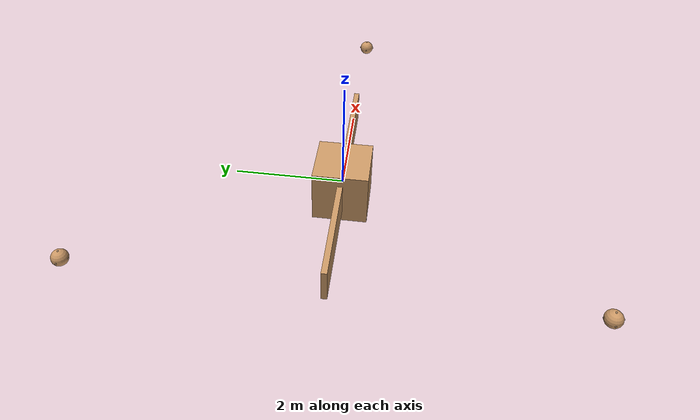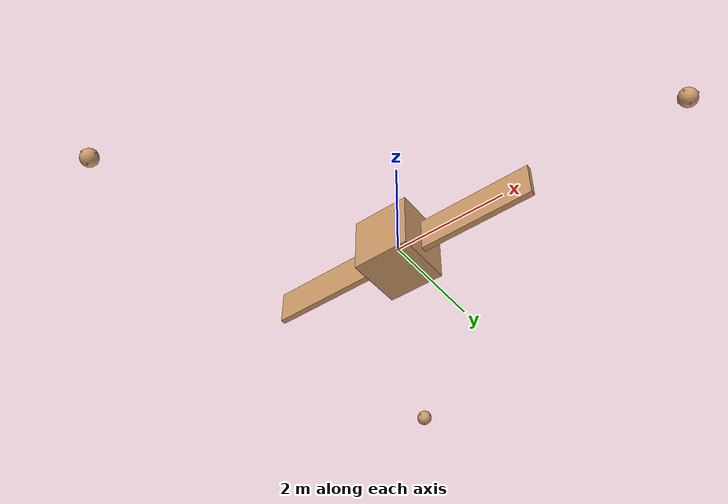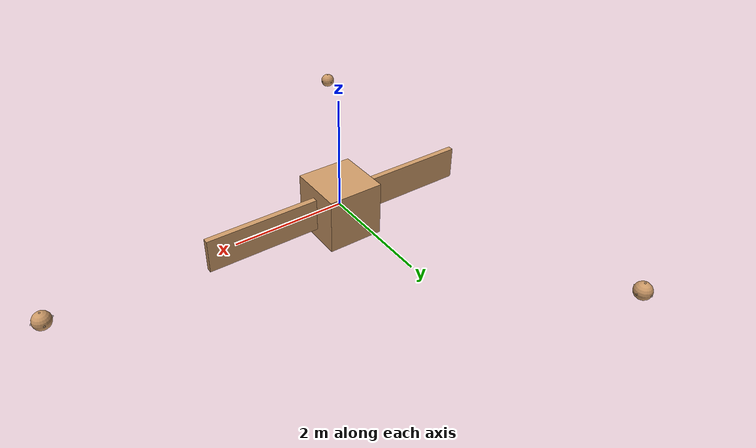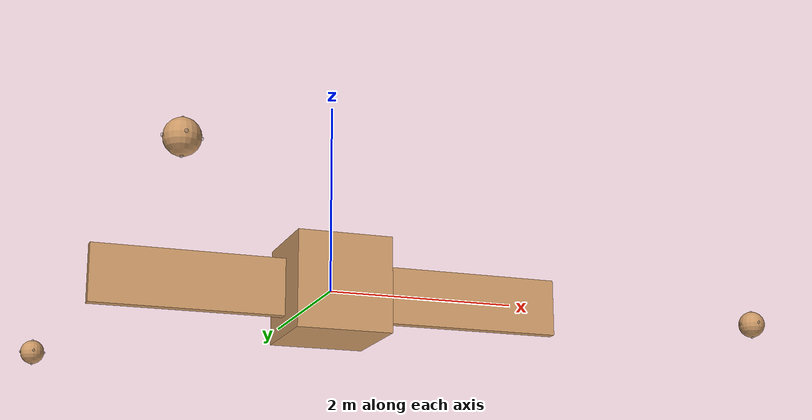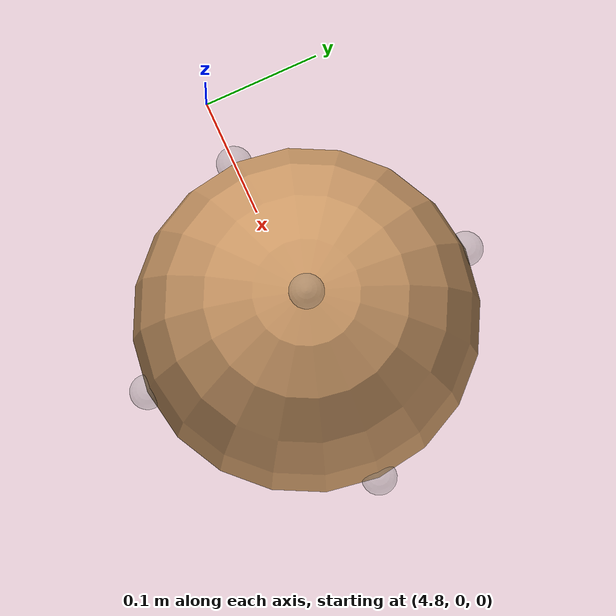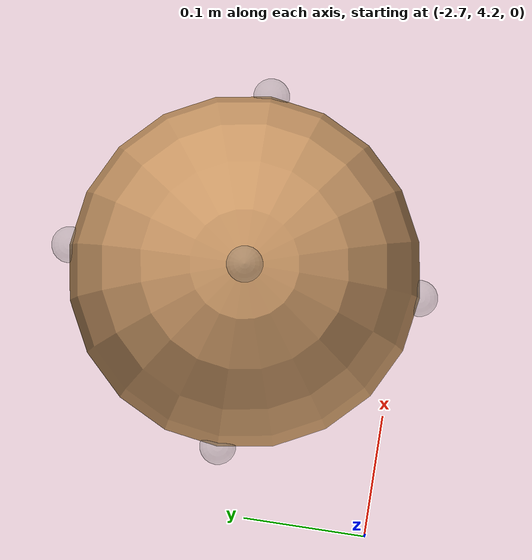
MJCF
<?xml version="1.0" encoding="utf-8"?>
<mujoco model="satellite_fleet">
  <compiler angle="degree" coordinate="local" inertiafromgeom="true"/>
  <option integrator="RK4" timestep="0.005" gravity="0 0 0"/>

  <visual>
    <global offwidth="2560" offheight="1440"/>
  </visual>

  <default>
    <joint armature="0" damping="0" limited="false"/>
    <geom conaffinity="0" condim="3" density="500" friction="1 0.5 0.5"
          margin="0" rgba="0.8 0.6 0.4 1"/>
    <site type="sphere" size="0.015" rgba="0.5 0.5 0.5 0.3"/>
  </default>

  <asset>
    <texture type="skybox" builtin="gradient" rgb1=".05 .05 .1" rgb2="0 0 0"
             width="32" height="32"/>
    <material name="inspector_1" rgba="0.2 0.6 0.9 0.9"/>
    <material name="inspector_2" rgba="0.9 0.4 0.2 0.9"/>
    <material name="inspector_3" rgba="0.3 0.8 0.3 0.9"/>
    <material name="target_mat" rgba="0.5 0.5 0.5 0.9"/>
    <material name="solar_mat" rgba="0.15 0.15 0.4 0.9"/>
    <material name="rw_mat" rgba="0.3 0.3 0.3 1"/>
  </asset>

  <worldbody>
    <light cutoff="100" diffuse="1 1 1" dir="-0 0 -1.3" directional="true"
           exponent="1" pos="0 0 10" specular="0.1 0.1 0.1"/>

    <!-- Fleet overview camera -->
    <camera name="fleet_cam" pos="15 15 12" mode="fixed" fovy="60"
            xyaxes="-0.707 0.707 0 -0.408 -0.408 0.816"/>

    <!-- ==================== TARGET SATELLITE ==================== -->
    <body name="target" pos="0 0 0">
      <geom name="target_body" type="box" size="0.5 0.5 0.5" material="target_mat"
            contype="0" conaffinity="0"/>
      <!-- Solar panels -->
      <geom name="solar_l" type="box" size="1.0 0.05 0.3" pos="-1.5 0 0"
            material="solar_mat" contype="0" conaffinity="0"/>
      <geom name="solar_r" type="box" size="1.0 0.05 0.3" pos="1.5 0 0"
            material="solar_mat" contype="0" conaffinity="0"/>
    </body>

    <!-- ==================== INSPECTOR 1 (Blue) ==================== -->
    <body name="inspector_1" pos="5 0 0">
      <joint name="inspector_1_root" type="free"/>
      <geom name="insp1_body" type="sphere" size="0.145" mass="9.1"
            material="inspector_1"/>

      <!-- Reaction Wheels -->
      <body name="insp1_rw_x" pos="0.08 0 0">
        <joint name="insp1_rw_x_joint" type="hinge" axis="1 0 0" damping="0.0001" armature="0.001"/>
        <geom type="cylinder" size="0.025 0.008" mass="0.3" euler="0 90 0" material="rw_mat"/>
      </body>
      <body name="insp1_rw_y" pos="0 0.08 0">
        <joint name="insp1_rw_y_joint" type="hinge" axis="0 1 0" damping="0.0001" armature="0.001"/>
        <geom type="cylinder" size="0.025 0.008" mass="0.3" euler="90 0 0" material="rw_mat"/>
      </body>
      <body name="insp1_rw_z" pos="0 0 0.08">
        <joint name="insp1_rw_z_joint" type="hinge" axis="0 0 1" damping="0.0001" armature="0.001"/>
        <geom type="cylinder" size="0.025 0.008" mass="0.3" material="rw_mat"/>
      </body>

      <!-- Thruster sites -->
      <site name="insp1_t_px" pos="0.145 0 0"/>
      <site name="insp1_t_mx" pos="-0.145 0 0"/>
      <site name="insp1_t_py" pos="0 0.145 0"/>
      <site name="insp1_t_my" pos="0 -0.145 0"/>
      <site name="insp1_t_pz" pos="0 0 0.145"/>
      <site name="insp1_t_mz" pos="0 0 -0.145"/>
    </body>

    <!-- ==================== INSPECTOR 2 (Orange) ==================== -->
    <body name="inspector_2" pos="-2.5 4.33 0">
      <joint name="inspector_2_root" type="free"/>
      <geom name="insp2_body" type="sphere" size="0.145" mass="9.1"
            material="inspector_2"/>

      <!-- Reaction Wheels -->
      <body name="insp2_rw_x" pos="0.08 0 0">
        <joint name="insp2_rw_x_joint" type="hinge" axis="1 0 0" damping="0.0001" armature="0.001"/>
        <geom type="cylinder" size="0.025 0.008" mass="0.3" euler="0 90 0" material="rw_mat"/>
      </body>
      <body name="insp2_rw_y" pos="0 0.08 0">
        <joint name="insp2_rw_y_joint" type="hinge" axis="0 1 0" damping="0.0001" armature="0.001"/>
        <geom type="cylinder" size="0.025 0.008" mass="0.3" euler="90 0 0" material="rw_mat"/>
      </body>
      <body name="insp2_rw_z" pos="0 0 0.08">
        <joint name="insp2_rw_z_joint" type="hinge" axis="0 0 1" damping="0.0001" armature="0.001"/>
        <geom type="cylinder" size="0.025 0.008" mass="0.3" material="rw_mat"/>
      </body>

      <!-- Thruster sites -->
      <site name="insp2_t_px" pos="0.145 0 0"/>
      <site name="insp2_t_mx" pos="-0.145 0 0"/>
      <site name="insp2_t_py" pos="0 0.145 0"/>
      <site name="insp2_t_my" pos="0 -0.145 0"/>
      <site name="insp2_t_pz" pos="0 0 0.145"/>
      <site name="insp2_t_mz" pos="0 0 -0.145"/>
    </body>

    <!-- ==================== INSPECTOR 3 (Green) ==================== -->
    <body name="inspector_3" pos="-2.5 -4.33 0">
      <joint name="inspector_3_root" type="free"/>
      <geom name="insp3_body" type="sphere" size="0.145" mass="9.1"
            material="inspector_3"/>

      <!-- Reaction Wheels -->
      <body name="insp3_rw_x" pos="0.08 0 0">
        <joint name="insp3_rw_x_joint" type="hinge" axis="1 0 0" damping="0.0001" armature="0.001"/>
        <geom type="cylinder" size="0.025 0.008" mass="0.3" euler="0 90 0" material="rw_mat"/>
      </body>
      <body name="insp3_rw_y" pos="0 0.08 0">
        <joint name="insp3_rw_y_joint" type="hinge" axis="0 1 0" damping="0.0001" armature="0.001"/>
        <geom type="cylinder" size="0.025 0.008" mass="0.3" euler="90 0 0" material="rw_mat"/>
      </body>
      <body name="insp3_rw_z" pos="0 0 0.08">
        <joint name="insp3_rw_z_joint" type="hinge" axis="0 0 1" damping="0.0001" armature="0.001"/>
        <geom type="cylinder" size="0.025 0.008" mass="0.3" material="rw_mat"/>
      </body>

      <!-- Thruster sites -->
      <site name="insp3_t_px" pos="0.145 0 0"/>
      <site name="insp3_t_mx" pos="-0.145 0 0"/>
      <site name="insp3_t_py" pos="0 0.145 0"/>
      <site name="insp3_t_my" pos="0 -0.145 0"/>
      <site name="insp3_t_pz" pos="0 0 0.145"/>
      <site name="insp3_t_mz" pos="0 0 -0.145"/>
    </body>
  </worldbody>

  <!-- ==================== ACTUATORS ==================== -->
  <actuator>
    <!-- Inspector 1 Reaction Wheels -->
    <motor name="insp1_rw_x" joint="insp1_rw_x_joint" gear="1" ctrlrange="-0.1 0.1" ctrllimited="true"/>
    <motor name="insp1_rw_y" joint="insp1_rw_y_joint" gear="1" ctrlrange="-0.1 0.1" ctrllimited="true"/>
    <motor name="insp1_rw_z" joint="insp1_rw_z_joint" gear="1" ctrlrange="-0.1 0.1" ctrllimited="true"/>

    <!-- Inspector 2 Reaction Wheels -->
    <motor name="insp2_rw_x" joint="insp2_rw_x_joint" gear="1" ctrlrange="-0.1 0.1" ctrllimited="true"/>
    <motor name="insp2_rw_y" joint="insp2_rw_y_joint" gear="1" ctrlrange="-0.1 0.1" ctrllimited="true"/>
    <motor name="insp2_rw_z" joint="insp2_rw_z_joint" gear="1" ctrlrange="-0.1 0.1" ctrllimited="true"/>

    <!-- Inspector 3 Reaction Wheels -->
    <motor name="insp3_rw_x" joint="insp3_rw_x_joint" gear="1" ctrlrange="-0.1 0.1" ctrllimited="true"/>
    <motor name="insp3_rw_y" joint="insp3_rw_y_joint" gear="1" ctrlrange="-0.1 0.1" ctrllimited="true"/>
    <motor name="insp3_rw_z" joint="insp3_rw_z_joint" gear="1" ctrlrange="-0.1 0.1" ctrllimited="true"/>
  </actuator>

  <!-- ==================== SENSORS ==================== -->
  <sensor>
    <!-- Inspector 1 -->
    <jointvel name="insp1_rw_x_speed" joint="insp1_rw_x_joint"/>
    <jointvel name="insp1_rw_y_speed" joint="insp1_rw_y_joint"/>
    <jointvel name="insp1_rw_z_speed" joint="insp1_rw_z_joint"/>
    <framepos name="insp1_pos" objtype="body" objname="inspector_1"/>
    <framequat name="insp1_quat" objtype="body" objname="inspector_1"/>
    <framelinvel name="insp1_vel" objtype="body" objname="inspector_1"/>
    <frameangvel name="insp1_angvel" objtype="body" objname="inspector_1"/>

    <!-- Inspector 2 -->
    <jointvel name="insp2_rw_x_speed" joint="insp2_rw_x_joint"/>
    <jointvel name="insp2_rw_y_speed" joint="insp2_rw_y_joint"/>
    <jointvel name="insp2_rw_z_speed" joint="insp2_rw_z_joint"/>
    <framepos name="insp2_pos" objtype="body" objname="inspector_2"/>
    <framequat name="insp2_quat" objtype="body" objname="inspector_2"/>
    <framelinvel name="insp2_vel" objtype="body" objname="inspector_2"/>
    <frameangvel name="insp2_angvel" objtype="body" objname="inspector_2"/>

    <!-- Inspector 3 -->
    <jointvel name="insp3_rw_x_speed" joint="insp3_rw_x_joint"/>
    <jointvel name="insp3_rw_y_speed" joint="insp3_rw_y_joint"/>
    <jointvel name="insp3_rw_z_speed" joint="insp3_rw_z_joint"/>
    <framepos name="insp3_pos" objtype="body" objname="inspector_3"/>
    <framequat name="insp3_quat" objtype="body" objname="inspector_3"/>
    <framelinvel name="insp3_vel" objtype="body" objname="inspector_3"/>
    <frameangvel name="insp3_angvel" objtype="body" objname="inspector_3"/>
  </sensor>

</mujoco>
